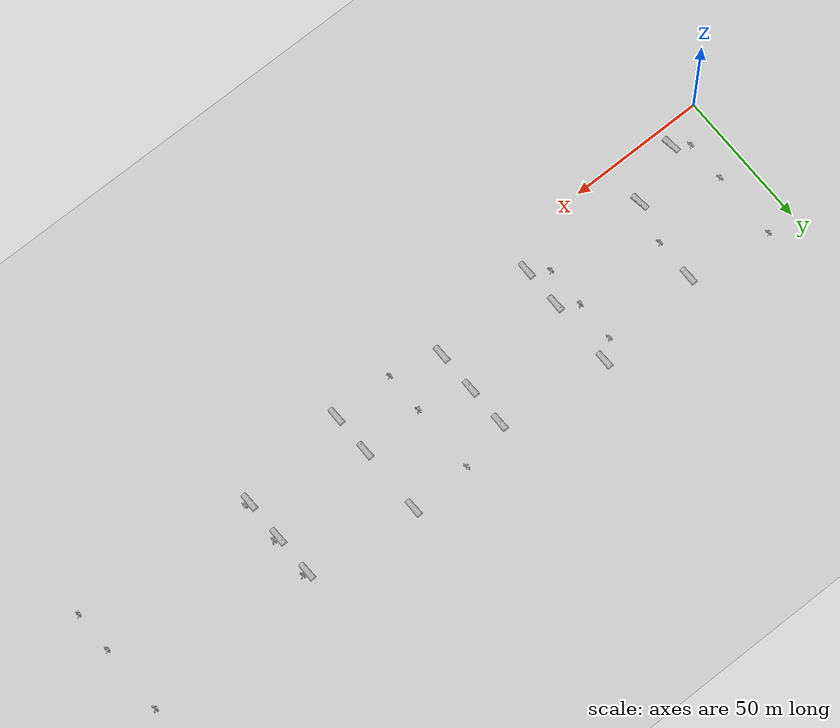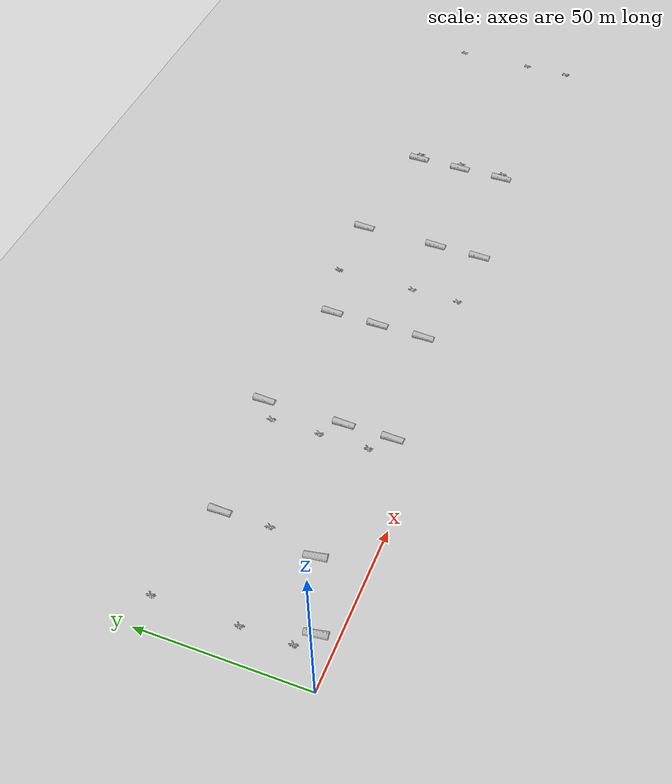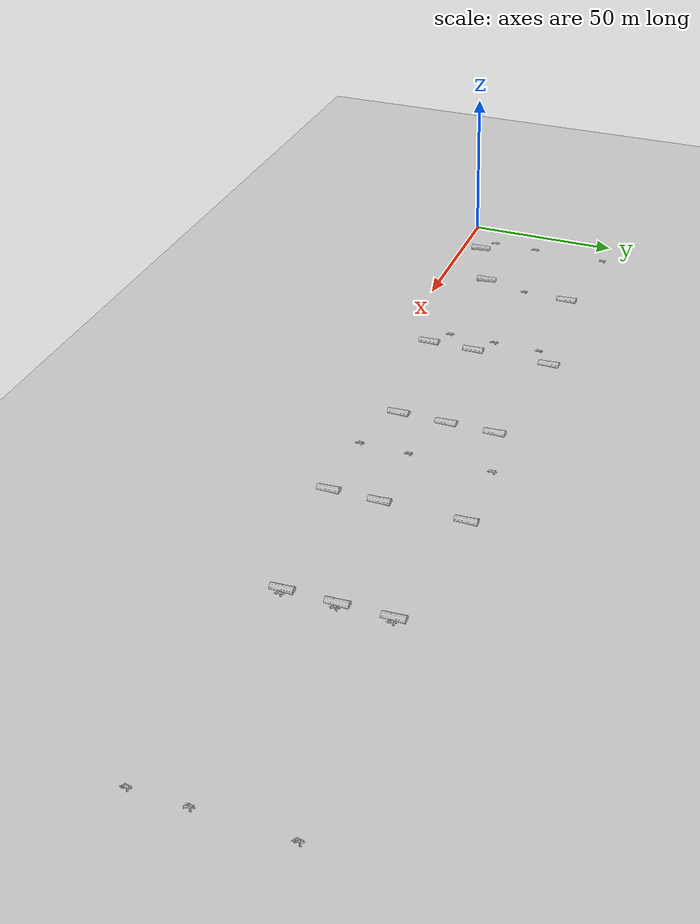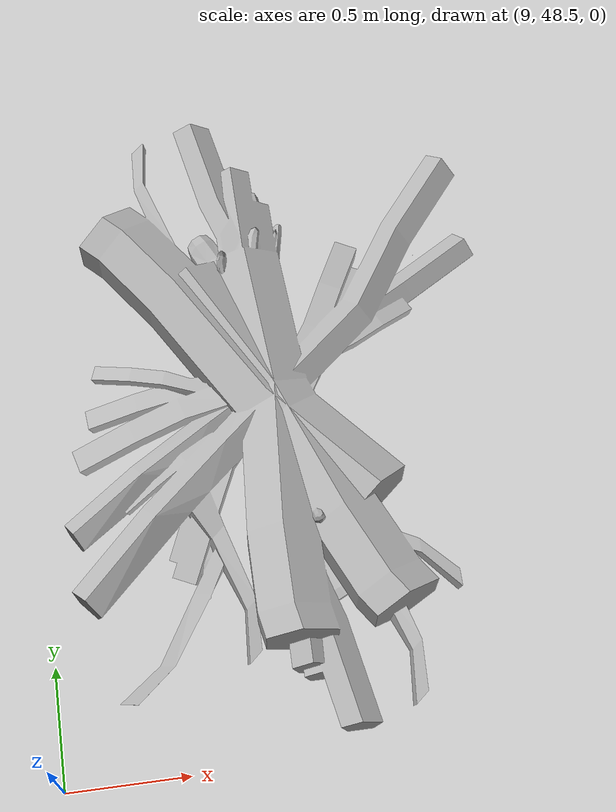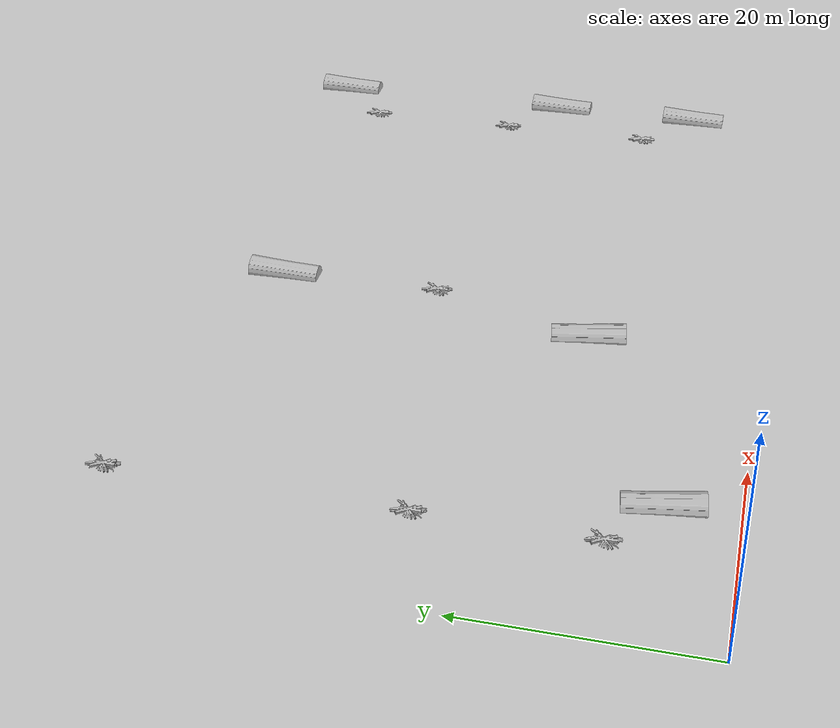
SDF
<sdf version="1.5">
 <world name="default">
  <include><uri>model://sun</uri></include>
  <include><pose>0 0 -0.10 0 0 0</pose><uri>model://ground_plane</uri></include>
  <spherical_coordinates>
   <surface_model>EARTH_WGS84</surface_model>
   <latitude_deg>-21.7783690</latitude_deg>
   <longitude_deg>-43.3697018</longitude_deg>
   <elevation>90</elevation>
  </spherical_coordinates>
  <include><uri>model://branche1_buoy</uri><name>buoy_1</name><pose>10 10 0 0 0 0</pose></include>
  <include><uri>model://branche1_buoy</uri><name>buoy_2</name><pose>74 15 0 0 0 0</pose></include>
  <include><uri>model://branche1_buoy</uri><name>buoy_3</name><pose>138 10 0 0 0 0</pose></include>
  <include><uri>model://branche1_buoy</uri><name>buoy_4</name><pose>202 15 0 0 0 0</pose></include>
  <include><uri>model://branche1_buoy</uri><name>buoy_5</name><pose>266 10 0 0 0 0</pose></include>
  <include><uri>model://trunk2_buoy</uri><name>buoy_6</name><pose>36 15 0 0 0 -3</pose></include>
  <include><uri>model://trunk2_buoy</uri><name>buoy_7</name><pose>80 10 0 0 0 0</pose></include>
  <include><uri>model://trunk2_buoy</uri><name>buoy_8</name><pose>120 15 0 0 0 0</pose></include>
  <include><uri>model://trunk2_buoy</uri><name>buoy_9</name><pose>160 10 0 0 0 0</pose></include>
  <include><uri>model://trunk2_buoy</uri><name>buoy_10</name><pose>200 15 0 0 0 0</pose></include>
  <include><uri>model://branche1_buoy</uri><name>buoy_11</name><pose>10 25 0 0 0 0</pose></include>
  <include><uri>model://branche1_buoy</uri><name>buoy_12</name><pose>74 30 0 0 0 0</pose></include>
  <include><uri>model://branche1_buoy</uri><name>buoy_13</name><pose>138 25 0 0 0 0</pose></include>
  <include><uri>model://branche1_buoy</uri><name>buoy_14</name><pose>202 30 0 0 0 0</pose></include>
  <include><uri>model://branche1_buoy</uri><name>buoy_15</name><pose>266 25 0 0 0 0</pose></include>
  <include><uri>model://branche1_buoy</uri><name>buoy_15n</name><pose>40 30 0 0 0 0</pose></include>
  <include><uri>model://trunk2_buoy</uri><name>buoy_16</name><pose>15 6 0 0 0 -3</pose></include>
  <include><uri>model://trunk2_buoy</uri><name>buoy_17</name><pose>80 25 0 0 0 0</pose></include>
  <include><uri>model://trunk2_buoy</uri><name>buoy_18</name><pose>120 30 0 0 0 0</pose></include>
  <include><uri>model://trunk2_buoy</uri><name>buoy_19</name><pose>160 25 0 0 0 0</pose></include>
  <include><uri>model://trunk2_buoy</uri><name>buoy_20</name><pose>200 30 0 0 0 0</pose></include>
  <include><uri>model://branche1_buoy</uri><name>buoy_21</name><pose>10 50 0 0 0 0</pose></include>
  <include><uri>model://branche1_buoy</uri><name>buoy_22</name><pose>74 45 0 0 0 0</pose></include>
  <include><uri>model://branche1_buoy</uri><name>buoy_23</name><pose>138 50 0 0 0 0</pose></include>
  <include><uri>model://branche1_buoy</uri><name>buoy_24</name><pose>202 45 0 0 0 0</pose></include>
  <include><uri>model://branche1_buoy</uri><name>buoy_25</name><pose>266 50 0 0 0 0</pose></include>
  <include><uri>model://trunk2_buoy</uri><name>buoy_26</name><pose>40 45 0 0 0 0</pose></include>
  <include><uri>model://trunk2_buoy</uri><name>buoy_27</name><pose>80 50 0 0 0 0</pose></include>
  <include><uri>model://trunk2_buoy</uri><name>buoy_28</name><pose>120 45 0 0 0 0</pose></include>
  <include><uri>model://trunk2_buoy</uri><name>buoy_29</name><pose>160 50 0 0 0 0</pose></include>
  <include><uri>model://trunk2_buoy</uri><name>buoy_30</name><pose>200 45 0 0 0 0</pose></include>
 </world>
</sdf>

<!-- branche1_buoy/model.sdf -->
<sdf version="1.5">
  <model name="branche1_buoy">
    <link name="link">
      <inertial>
        <pose>0 0 -2 0 0 0</pose>
        <!-- Mass determined based on buoyancy geometry so object
             floats at mid-point of sphere -->
        <mass>20</mass>
        <!-- Mark only - based on cylinder -->
        <inertia>
          <ixx>1.0</ixx>
          <ixy>0</ixy>
          <ixz>0</ixz>
          <iyy>1.0</iyy>
          <iyz>0</iyz>
          <izz>0.1</izz>
        </inertia>
      </inertial>
        <collision name='upright'>
          <geometry>
            <cylinder>
              <radius>1.5</radius>
              <length>0.5</length>
            </cylinder>
          </geometry>
          <max_contacts>10</max_contacts>
          <surface>
            <contact>
              <ode/>
            </contact>
            <bounce/>
            <friction>
              <torsional>
                <ode/>
              </torsional>
              <ode/>
            </friction>
          </surface>
        </collision>
      <visual name="trunk_visual">
        <geometry>
	        <mesh><uri>model://branche1_buoy/meshes/branche1.dae</uri></mesh>
        </geometry>
      </visual>
    </link>

    <plugin name="TrunkBuoyancyPlugin" filename="libbuoyancy_gazebo_plugin.so">
      <wave_model>ocean_waves</wave_model>
      <fluid_density>1000</fluid_density>
      <fluid_level>0.0</fluid_level>
      <linear_drag>25.0</linear_drag>
      <angular_drag>2.0</angular_drag>
      <buoyancy name="buoyancy_sphere">
        <link_name>link</link_name>
        <pose>0 0 0.2 0 0 0</pose>
        <geometry>
          <sphere>
            <radius>0.325</radius>
          </sphere>
        </geometry>
      </buoyancy>
    </plugin>

    <plugin name="TrunkFollowPlugin" filename="libfollow_plugin.so">
      <link_name>link</link_name>
      <loop_forever>true</loop_forever>
      <line>
       <direction>0</direction>
       <length>-1</length>
       <force>100</force>
       <torque>1</torque>
   </line>
    </plugin>

  </model>
</sdf>

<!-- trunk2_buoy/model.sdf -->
<sdf version="1.6">
  <model name="trunk2_buoy">
    <link name="link">
      <inertial>
        <pose>0 0 -2 0 0 0</pose>
        <!-- Mass determined based on buoyancy geometry so object
             floats at mid-point of sphere -->
        <mass>20</mass>
        <!-- Mark only - based on cylinder -->
        <inertia>
          <ixx>1.0</ixx>
          <ixy>0</ixy>
          <ixz>0</ixz>
          <iyy>1.0</iyy>
          <iyz>0</iyz>
          <izz>0.1</izz>
        </inertia>
      </inertial>
      <collision name="trunk_collision">
        <pose>0 0 0 1.57 0 0</pose>
        <geometry>
          <cylinder>
	    <radius>1</radius>
	    <length>7</length>
          </cylinder>
        </geometry>
      </collision>
      <visual name="trunk_visual">
        <geometry>
	        <mesh><uri>model://models_scaled/trunk2_buoy/meshes/trunk2.dae</uri></mesh>
        </geometry>
      </visual>
    </link>

    <plugin name="TrunkBuoyancyPlugin" filename="libbuoyancy_gazebo_plugin.so">
      <wave_model>ocean_waves</wave_model>
      <fluid_density>1000</fluid_density>
      <fluid_level>0.0</fluid_level>
      <linear_drag>25.0</linear_drag>
      <angular_drag>2.0</angular_drag>
      <buoyancy name="buoyancy_sphere">
        <link_name>link</link_name>
        <pose>0 0 0.2 0 0 0</pose>
        <geometry>
          <sphere>
            <radius>0.325</radius>
          </sphere>
        </geometry>
      </buoyancy>
    </plugin>
    <plugin name="TrunkFollowPlugin" filename="libfollow_plugin.so">
      <link_name>link</link_name>
      <loop_forever>true</loop_forever>
      <waypoints>
        <waypoint>554 172</waypoint>
        <waypoint>552 168</waypoint>
      </waypoints>
    </plugin>
  </model>
</sdf>
